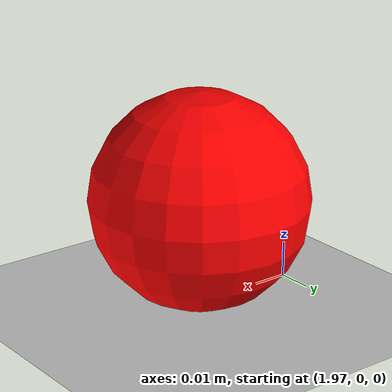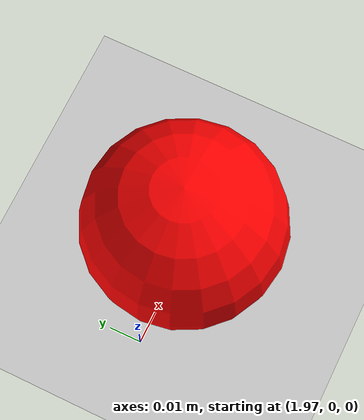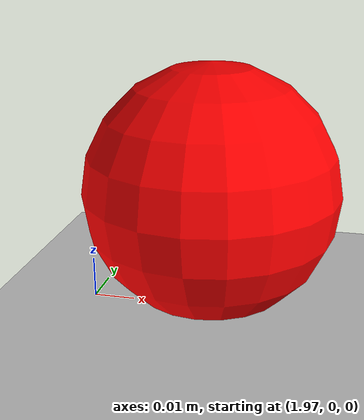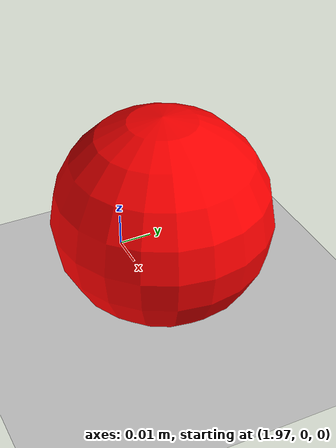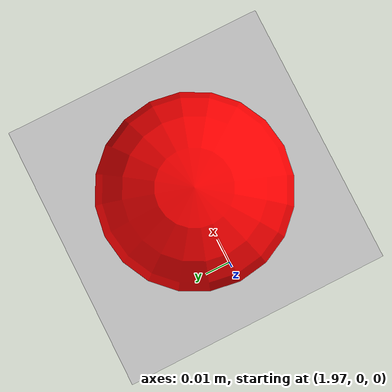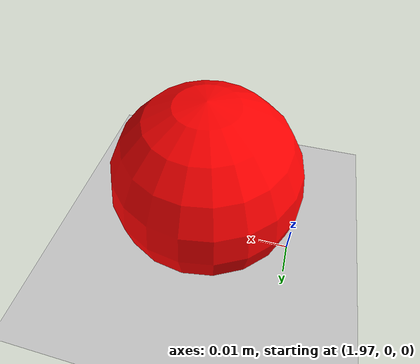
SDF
<?xml version="1.0" ?>
<sdf version="1.8">
  <world name="locobot_world">

    <physics name="1ms" type="ignored">
      <max_step_size>0.001</max_step_size>
      <real_time_factor>1.0</real_time_factor>
    </physics>

    <plugin filename="gz-sim-physics-system"
      name="gz::sim::systems::Physics"/>
    <plugin filename="gz-sim-user-commands-system"
      name="gz::sim::systems::UserCommands"/>
    <plugin filename="gz-sim-scene-broadcaster-system"
      name="gz::sim::systems::SceneBroadcaster"/>
    <plugin filename="gz-sim-sensors-system"
      name="gz::sim::systems::Sensors">
      <render_engine>ogre2</render_engine>
    </plugin>
    <plugin filename="gz-sim-contact-system"
      name="gz::sim::systems::Contact"/>

    <light name="sun" type="directional">
      <cast_shadows>true</cast_shadows>
      <pose>0 0 10 0 0 0</pose>
      <diffuse>0.8 0.8 0.8 1</diffuse>
      <specular>0.2 0.2 0.2 1</specular>
      <attenuation>
        <range>1000</range>
        <constant>0.9</constant>
        <linear>0.01</linear>
        <quadratic>0.001</quadratic>
      </attenuation>
      <direction>-0.5 0.1 -0.9</direction>
    </light>

    <model name="ground_plane">
      <static>true</static>
      <link name="link">
        <collision name="collision">
          <geometry>
            <plane>
              <normal>0 0 1</normal>
              <size>100 100</size>
            </plane>
          </geometry>
        </collision>
        <visual name="visual">
          <geometry>
            <plane>
              <normal>0 0 1</normal>
              <size>100 100</size>
            </plane>
          </geometry>
          <material>
            <ambient>0.8 0.8 0.8 1</ambient>
            <diffuse>0.8 0.8 0.8 1</diffuse>
          </material>
        </visual>
      </link>
    </model>

    <!-- Ball for retrieval task -->
    <model name="ball">
      <pose>2 0 0.03 0 0 0</pose>
      <link name="ball_link">
        <inertial>
          <mass>0.1</mass>
          <inertia>
            <ixx>0.00004</ixx>
            <iyy>0.00004</iyy>
            <izz>0.00004</izz>
          </inertia>
        </inertial>
        <collision name="collision">
          <geometry>
            <sphere><radius>0.03</radius></sphere>
          </geometry>
        </collision>
        <visual name="visual">
          <geometry>
            <sphere><radius>0.03</radius></sphere>
          </geometry>
          <material>
            <ambient>1 0 0 1</ambient>
            <diffuse>1 0 0 1</diffuse>
          </material>
        </visual>
      </link>
    </model>

  </world>
</sdf>
